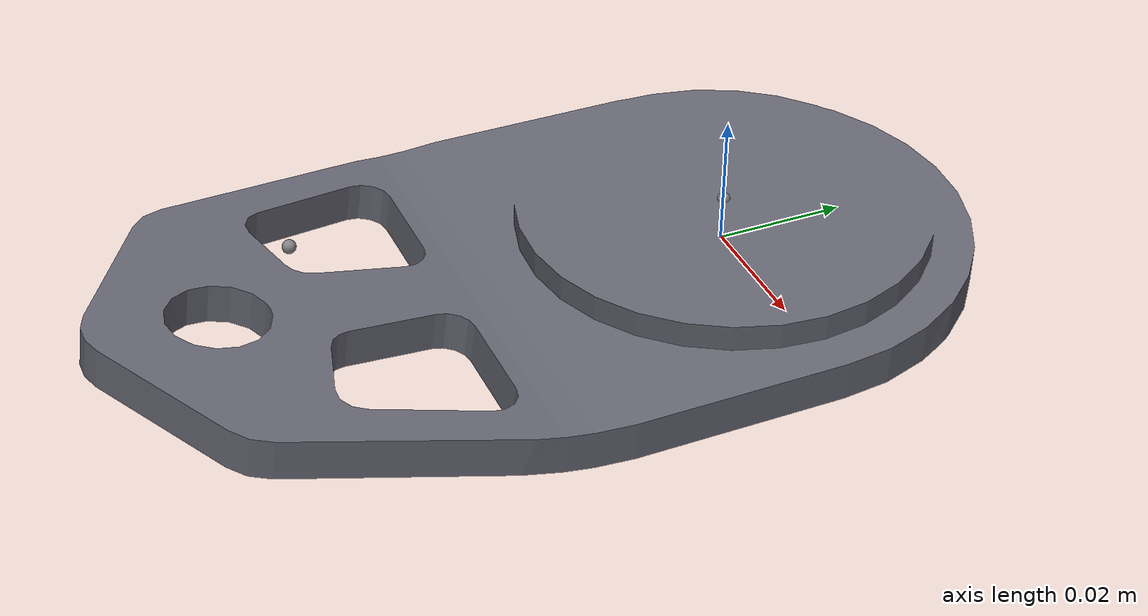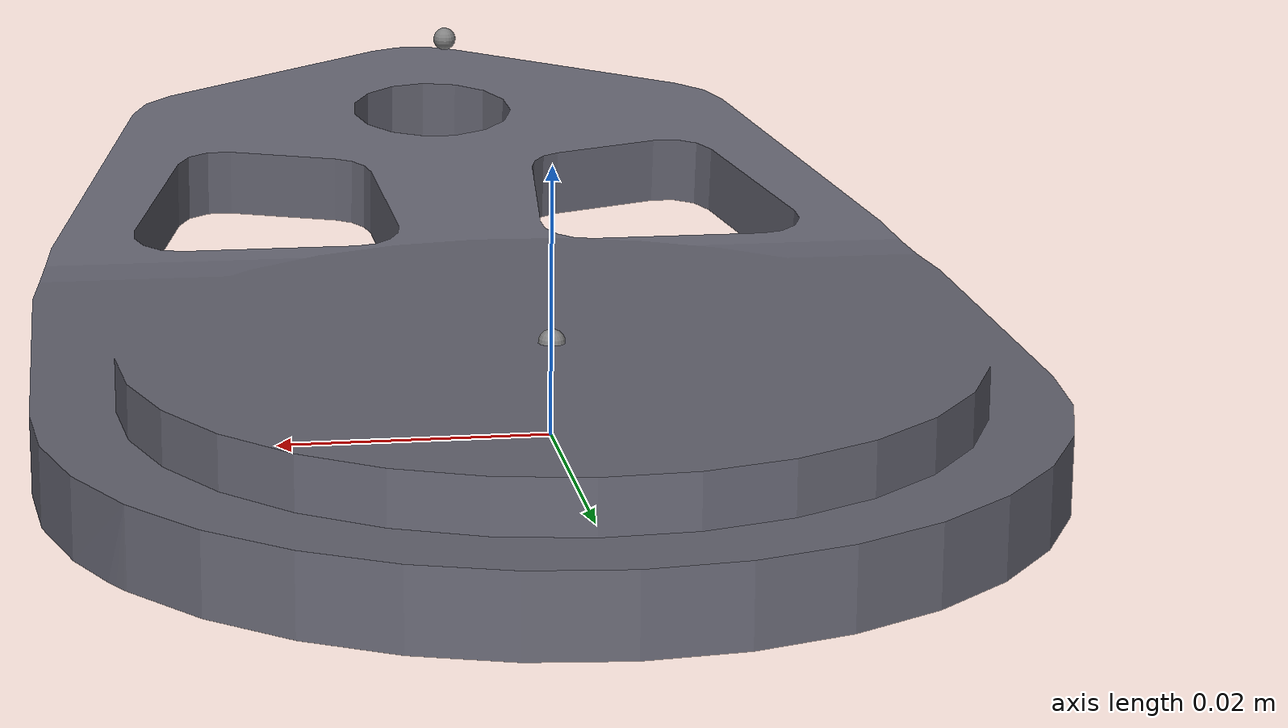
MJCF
<mujoco model="picknik_ur_realsense_adapter">

  <compiler meshdir="assets" autolimits="true"/>

  <asset>
    <mesh name="adapter_visual"    file="adapter.obj"/>
    <mesh name="adapter_collision" file="adapter_collision.stl"/>
  </asset>

  <worldbody>
    <body name="adapter">
      <!-- visual mesh (group 1 = visible in GUI) -->
      <geom name="adapter_visual"    type="mesh" mesh="adapter_visual"
            contype="0" conaffinity="0" group="1"
            rgba="0.4 0.4 0.45 1.0"/>
      <!-- collision mesh -->
      <geom name="adapter_collision" type="mesh" mesh="adapter_collision"
            contype="1" conaffinity="1" group="3" mass="0.12"
            rgba="0.4 0.4 0.45 0.0"/>

      <!-- gripper re-attaches 7 mm further along tool axis -->
      <site name="tool0" pos="0 0 0.007" size="0.001"/>

      <!-- D435i mount: offset side-mounted, optical axis aimed along tool +Z
           quat = Rx(-90°) * q_urdf so D435i +Z (optical) → bracket +Z (workspace) -->
      <site name="camera_mount"
            pos="0 -0.067 0.0171"
            quat="0.706139 -0.036979 0.036979 0.706139"
            size="0.001"/>
    </body>
  </worldbody>
</mujoco>
